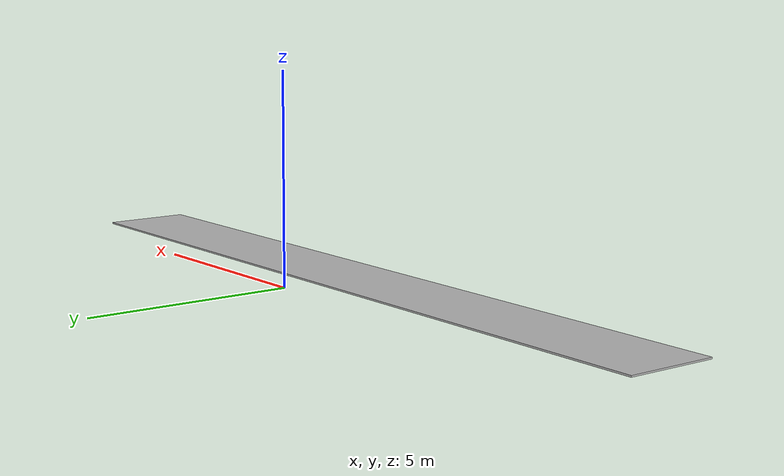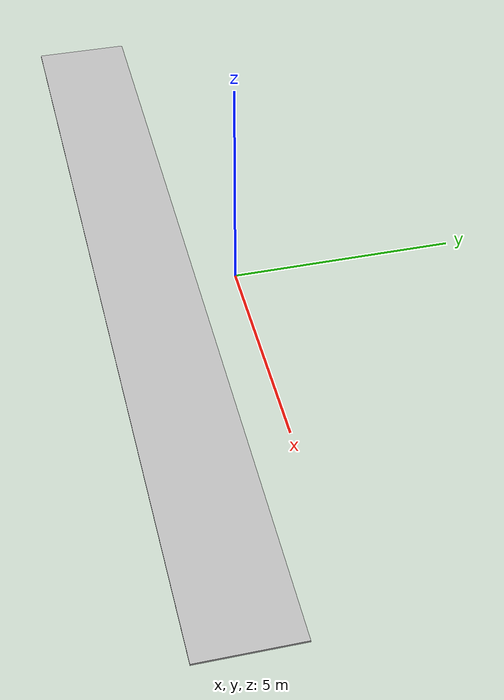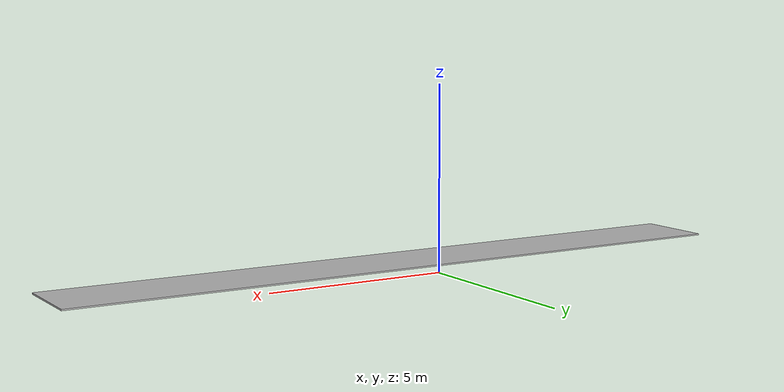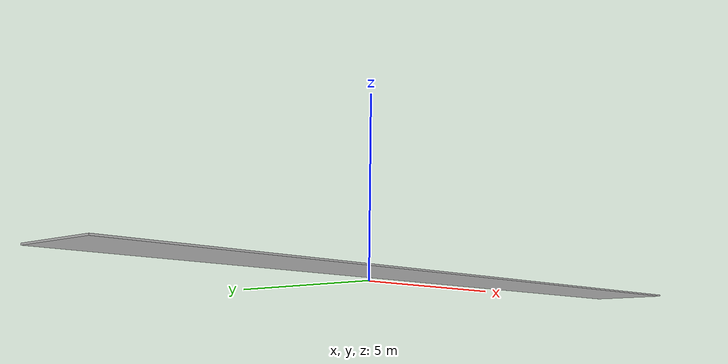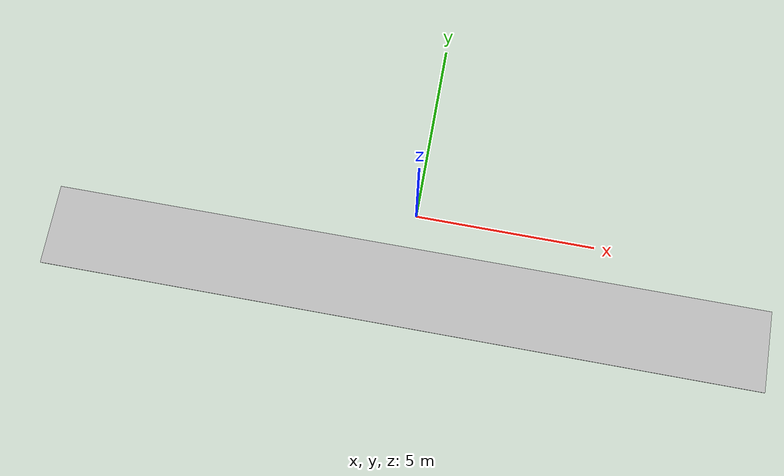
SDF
<?xml version="1.0" ?>
<sdf version="1.4">
  <model name="(DS) Straight Road - 100m">
    <static>true</static>
    <link name="link">
      <inertial>
        <pose>0 0 0 0 0 0</pose>
        <mass>1</mass>
        <inertia>
          <ixx>1</ixx>
          <iyy>1</iyy>
          <izz>1</izz>
          <ixy>0</ixy>
          <ixz>0</ixz>
        </inertia>
      </inertial>
      <collision name="collision">
        <geometry>
          <mesh>
            <uri>model://ds_straight_road_100m/meshes/straight_road_100m.dae</uri>
          </mesh>
        </geometry>
      </collision>
      <visual name="visual">
        <geometry>
          <mesh>
<scale> 0.2 0.2 0.2 </scale>
            <uri>model://ds_straight_road_100m/meshes/straight_road_100m.dae</uri>
          </mesh>
        </geometry>
      </visual>
    </link>
  </model>
</sdf>
